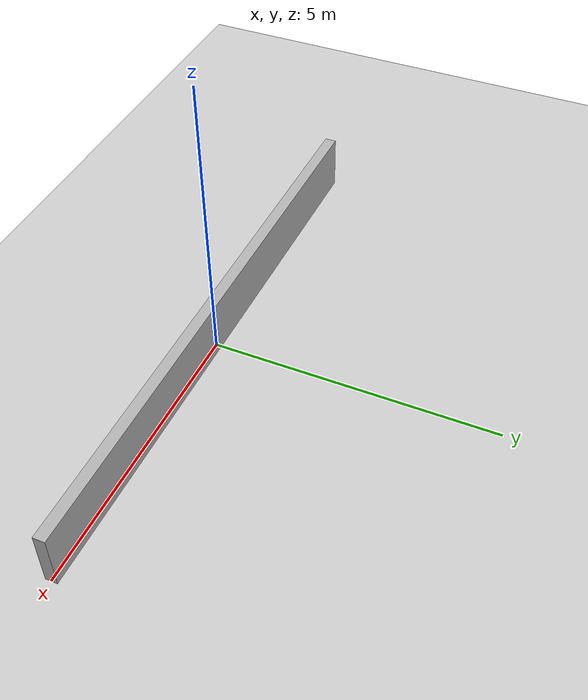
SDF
<?xml version="1.0" ?>
<sdf version="1.5">
  <world name="default">
    <!-- A global light source -->
    <include>
      <uri>model://sun</uri>
    </include>

    <!-- A ground plane -->
    <include>
      <uri>model://ground_plane</uri>
    </include>

    <!-- 1-meter high wall -->
    <model name="wall">
      <static>true</static>
      <pose>0 0 0.5 0 0 0</pose> <!-- Center at ground level -->
      <link name="wall_link">
        <collision name="wall_collision">
          <geometry>
            <box>
              <size>10 0.2 1</size> <!-- Length, width, height -->
            </box>
          </geometry>
        </collision>
        <visual name="wall_visual">
          <geometry>
            <box>
              <size>10 0.2 1</size> <!-- Length, width, height -->
            </box>
          </geometry>
          <material>
            <ambient>0.7 0.7 0.7 1</ambient> <!-- Light gray color -->
            <diffuse>0.7 0.7 0.7 1</diffuse>
          </material>
        </visual>
      </link>
    </model>
  </world>
</sdf>
